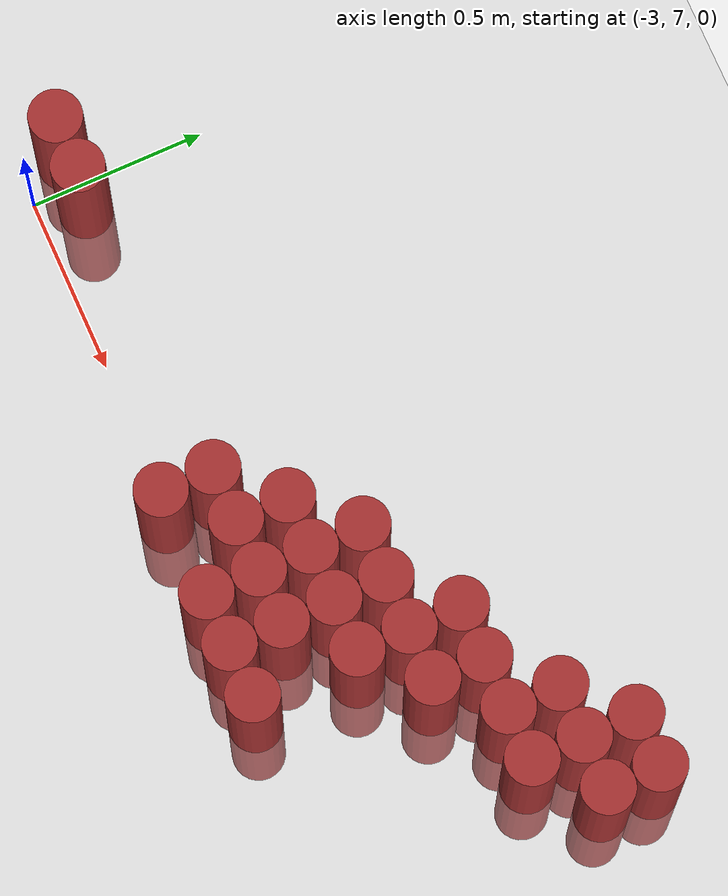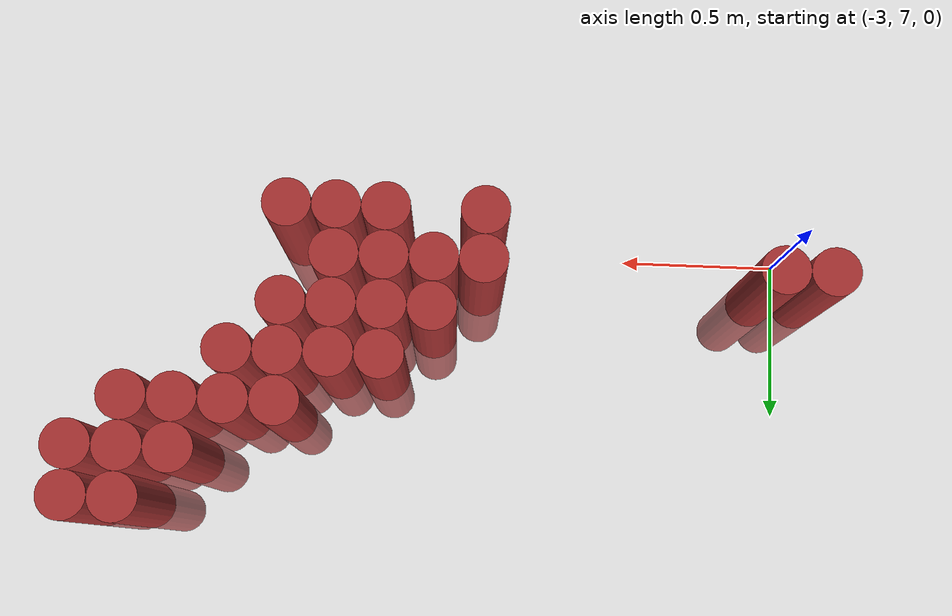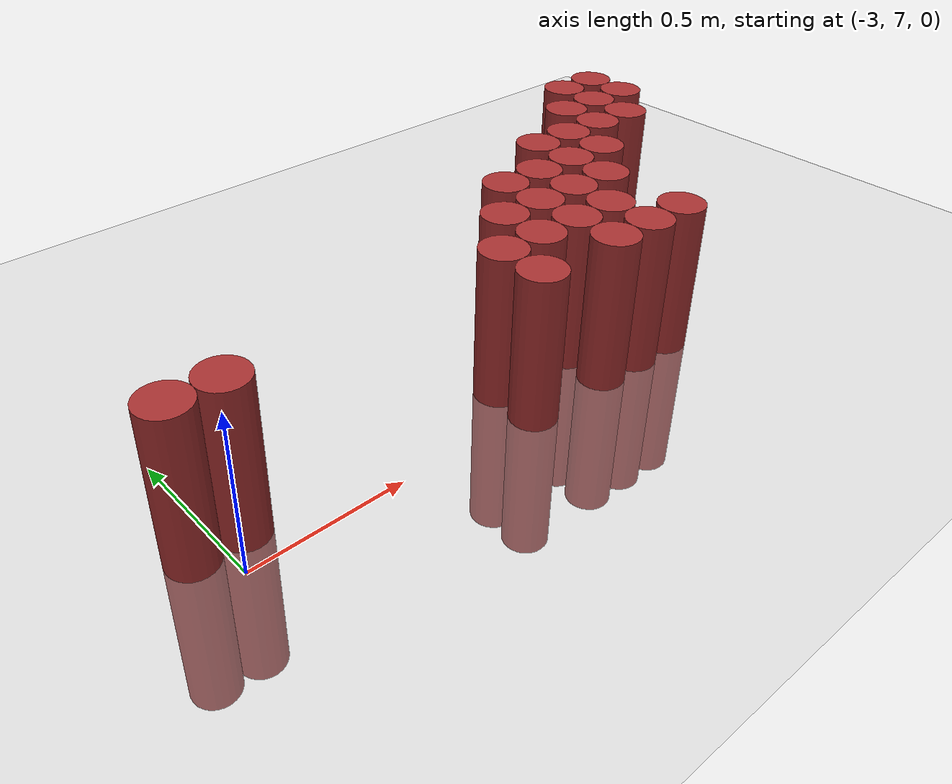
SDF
<sdf version="1.6">
 <world name="default">
  <model name="ground_plane">
   <static>1</static>
   <link name="link">
    <collision name="collision">
     <geometry><plane><normal>0 0 1</normal><size>100 100</size></plane></geometry>
     <surface><friction><ode><mu>100</mu><mu2>50</mu2></ode></friction></surface>
    </collision>
    <visual name="visual">
     <cast_shadows>0</cast_shadows>
     <geometry><plane><normal>0 0 1</normal><size>100 100</size></plane></geometry>
     <material>
      <script><uri>file://media/materials/scripts/gazebo.material</uri><name>Gazebo/Grey</name></script>
     </material>
    </visual>
   </link>
  </model>
  <model name="unit_cylinder_169">
   <static>1</static>
   <pose>-3.075000 7.125000 0.000000 0.000000 0.000000 0.000000</pose>
   <link name="link">
    <inertial>
     <mass>1</mass>
     <inertia><ixx>0.145833</ixx><ixy>0</ixy><ixz>0</ixz><iyy>0.145833</iyy><iyz>0</iyz><izz>0.125</izz></inertia>
    </inertial>
    <collision name="collision">
     <geometry><cylinder><radius>0.075000</radius><length>1</length></cylinder></geometry>
    </collision>
    <visual name="visual">
     <geometry><cylinder><radius>0.075000</radius><length>1</length></cylinder></geometry>
     <material>
      <ambient>0.648000 0.192000 0.192000 1</ambient>
      <diffuse>0.648000 0.192000 0.192000 1</diffuse>
     </material>
     <material>
      <script><name>Gazebo/Grey</name><uri>file://media/materials/scripts/gazebo.material</uri></script>
     </material>
    </visual>
   </link>
  </model>
  <model name="unit_cylinder_176">
   <static>1</static>
   <pose>-2.925000 7.125000 0.000000 0.000000 0.000000 0.000000</pose>
   <link name="link">
    <inertial>
     <mass>1</mass>
     <inertia><ixx>0.145833</ixx><ixy>0</ixy><ixz>0</ixz><iyy>0.145833</iyy><iyz>0</iyz><izz>0.125</izz></inertia>
    </inertial>
    <collision name="collision">
     <geometry><cylinder><radius>0.075000</radius><length>1</length></cylinder></geometry>
    </collision>
    <visual name="visual">
     <geometry><cylinder><radius>0.075000</radius><length>1</length></cylinder></geometry>
     <material>
      <ambient>0.648000 0.192000 0.192000 1</ambient>
      <diffuse>0.648000 0.192000 0.192000 1</diffuse>
     </material>
     <material>
      <script><name>Gazebo/Grey</name><uri>file://media/materials/scripts/gazebo.material</uri></script>
     </material>
    </visual>
   </link>
  </model>
  <model name="unit_cylinder_197">
   <static>1</static>
   <pose>-2.025000 6.975000 0.000000 0.000000 0.000000 0.000000</pose>
   <link name="link">
    <inertial>
     <mass>1</mass>
     <inertia><ixx>0.145833</ixx><ixy>0</ixy><ixz>0</ixz><iyy>0.145833</iyy><iyz>0</iyz><izz>0.125</izz></inertia>
    </inertial>
    <collision name="collision">
     <geometry><cylinder><radius>0.075000</radius><length>1</length></cylinder></geometry>
    </collision>
    <visual name="visual">
     <geometry><cylinder><radius>0.075000</radius><length>1</length></cylinder></geometry>
     <material>
      <ambient>0.648000 0.192000 0.192000 1</ambient>
      <diffuse>0.648000 0.192000 0.192000 1</diffuse>
     </material>
     <material>
      <script><name>Gazebo/Grey</name><uri>file://media/materials/scripts/gazebo.material</uri></script>
     </material>
    </visual>
   </link>
  </model>
  <model name="unit_cylinder_198">
   <static>1</static>
   <pose>-2.025000 7.125000 0.000000 0.000000 0.000000 0.000000</pose>
   <link name="link">
    <inertial>
     <mass>1</mass>
     <inertia><ixx>0.145833</ixx><ixy>0</ixy><ixz>0</ixz><iyy>0.145833</iyy><iyz>0</iyz><izz>0.125</izz></inertia>
    </inertial>
    <collision name="collision">
     <geometry><cylinder><radius>0.075000</radius><length>1</length></cylinder></geometry>
    </collision>
    <visual name="visual">
     <geometry><cylinder><radius>0.075000</radius><length>1</length></cylinder></geometry>
     <material>
      <ambient>0.648000 0.192000 0.192000 1</ambient>
      <diffuse>0.648000 0.192000 0.192000 1</diffuse>
     </material>
     <material>
      <script><name>Gazebo/Grey</name><uri>file://media/materials/scripts/gazebo.material</uri></script>
     </material>
    </visual>
   </link>
  </model>
  <model name="unit_cylinder_200">
   <static>1</static>
   <pose>-1.875000 7.125000 0.000000 0.000000 0.000000 0.000000</pose>
   <link name="link">
    <inertial>
     <mass>1</mass>
     <inertia><ixx>0.145833</ixx><ixy>0</ixy><ixz>0</ixz><iyy>0.145833</iyy><iyz>0</iyz><izz>0.125</izz></inertia>
    </inertial>
    <collision name="collision">
     <geometry><cylinder><radius>0.075000</radius><length>1</length></cylinder></geometry>
    </collision>
    <visual name="visual">
     <geometry><cylinder><radius>0.075000</radius><length>1</length></cylinder></geometry>
     <material>
      <ambient>0.648000 0.192000 0.192000 1</ambient>
      <diffuse>0.648000 0.192000 0.192000 1</diffuse>
     </material>
     <material>
      <script><name>Gazebo/Grey</name><uri>file://media/materials/scripts/gazebo.material</uri></script>
     </material>
    </visual>
   </link>
  </model>
  <model name="unit_cylinder_201">
   <static>1</static>
   <pose>-1.875000 7.275000 0.000000 0.000000 0.000000 0.000000</pose>
   <link name="link">
    <inertial>
     <mass>1</mass>
     <inertia><ixx>0.145833</ixx><ixy>0</ixy><ixz>0</ixz><iyy>0.145833</iyy><iyz>0</iyz><izz>0.125</izz></inertia>
    </inertial>
    <collision name="collision">
     <geometry><cylinder><radius>0.075000</radius><length>1</length></cylinder></geometry>
    </collision>
    <visual name="visual">
     <geometry><cylinder><radius>0.075000</radius><length>1</length></cylinder></geometry>
     <material>
      <ambient>0.648000 0.192000 0.192000 1</ambient>
      <diffuse>0.648000 0.192000 0.192000 1</diffuse>
     </material>
     <material>
      <script><name>Gazebo/Grey</name><uri>file://media/materials/scripts/gazebo.material</uri></script>
     </material>
    </visual>
   </link>
  </model>
  <model name="unit_cylinder_205">
   <static>1</static>
   <pose>-1.725000 6.975000 0.000000 0.000000 0.000000 0.000000</pose>
   <link name="link">
    <inertial>
     <mass>1</mass>
     <inertia><ixx>0.145833</ixx><ixy>0</ixy><ixz>0</ixz><iyy>0.145833</iyy><iyz>0</iyz><izz>0.125</izz></inertia>
    </inertial>
    <collision name="collision">
     <geometry><cylinder><radius>0.075000</radius><length>1</length></cylinder></geometry>
    </collision>
    <visual name="visual">
     <geometry><cylinder><radius>0.075000</radius><length>1</length></cylinder></geometry>
     <material>
      <ambient>0.648000 0.192000 0.192000 1</ambient>
      <diffuse>0.648000 0.192000 0.192000 1</diffuse>
     </material>
     <material>
      <script><name>Gazebo/Grey</name><uri>file://media/materials/scripts/gazebo.material</uri></script>
     </material>
    </visual>
   </link>
  </model>
  <model name="unit_cylinder_206">
   <static>1</static>
   <pose>-1.725000 7.125000 0.000000 0.000000 0.000000 0.000000</pose>
   <link name="link">
    <inertial>
     <mass>1</mass>
     <inertia><ixx>0.145833</ixx><ixy>0</ixy><ixz>0</ixz><iyy>0.145833</iyy><iyz>0</iyz><izz>0.125</izz></inertia>
    </inertial>
    <collision name="collision">
     <geometry><cylinder><radius>0.075000</radius><length>1</length></cylinder></geometry>
    </collision>
    <visual name="visual">
     <geometry><cylinder><radius>0.075000</radius><length>1</length></cylinder></geometry>
     <material>
      <ambient>0.648000 0.192000 0.192000 1</ambient>
      <diffuse>0.648000 0.192000 0.192000 1</diffuse>
     </material>
     <material>
      <script><name>Gazebo/Grey</name><uri>file://media/materials/scripts/gazebo.material</uri></script>
     </material>
    </visual>
   </link>
  </model>
  <model name="unit_cylinder_207">
   <static>1</static>
   <pose>-1.725000 7.275000 0.000000 0.000000 0.000000 0.000000</pose>
   <link name="link">
    <inertial>
     <mass>1</mass>
     <inertia><ixx>0.145833</ixx><ixy>0</ixy><ixz>0</ixz><iyy>0.145833</iyy><iyz>0</iyz><izz>0.125</izz></inertia>
    </inertial>
    <collision name="collision">
     <geometry><cylinder><radius>0.075000</radius><length>1</length></cylinder></geometry>
    </collision>
    <visual name="visual">
     <geometry><cylinder><radius>0.075000</radius><length>1</length></cylinder></geometry>
     <material>
      <ambient>0.648000 0.192000 0.192000 1</ambient>
      <diffuse>0.648000 0.192000 0.192000 1</diffuse>
     </material>
     <material>
      <script><name>Gazebo/Grey</name><uri>file://media/materials/scripts/gazebo.material</uri></script>
     </material>
    </visual>
   </link>
  </model>
  <model name="unit_cylinder_208">
   <static>1</static>
   <pose>-1.725000 7.425000 0.000000 0.000000 0.000000 0.000000</pose>
   <link name="link">
    <inertial>
     <mass>1</mass>
     <inertia><ixx>0.145833</ixx><ixy>0</ixy><ixz>0</ixz><iyy>0.145833</iyy><iyz>0</iyz><izz>0.125</izz></inertia>
    </inertial>
    <collision name="collision">
     <geometry><cylinder><radius>0.075000</radius><length>1</length></cylinder></geometry>
    </collision>
    <visual name="visual">
     <geometry><cylinder><radius>0.075000</radius><length>1</length></cylinder></geometry>
     <material>
      <ambient>0.648000 0.192000 0.192000 1</ambient>
      <diffuse>0.648000 0.192000 0.192000 1</diffuse>
     </material>
     <material>
      <script><name>Gazebo/Grey</name><uri>file://media/materials/scripts/gazebo.material</uri></script>
     </material>
    </visual>
   </link>
  </model>
  <model name="unit_cylinder_210">
   <static>1</static>
   <pose>-1.575000 6.975000 0.000000 0.000000 0.000000 0.000000</pose>
   <link name="link">
    <inertial>
     <mass>1</mass>
     <inertia><ixx>0.145833</ixx><ixy>0</ixy><ixz>0</ixz><iyy>0.145833</iyy><iyz>0</iyz><izz>0.125</izz></inertia>
    </inertial>
    <collision name="collision">
     <geometry><cylinder><radius>0.075000</radius><length>1</length></cylinder></geometry>
    </collision>
    <visual name="visual">
     <geometry><cylinder><radius>0.075000</radius><length>1</length></cylinder></geometry>
     <material>
      <ambient>0.648000 0.192000 0.192000 1</ambient>
      <diffuse>0.648000 0.192000 0.192000 1</diffuse>
     </material>
     <material>
      <script><name>Gazebo/Grey</name><uri>file://media/materials/scripts/gazebo.material</uri></script>
     </material>
    </visual>
   </link>
  </model>
  <model name="unit_cylinder_211">
   <static>1</static>
   <pose>-1.575000 7.125000 0.000000 0.000000 0.000000 0.000000</pose>
   <link name="link">
    <inertial>
     <mass>1</mass>
     <inertia><ixx>0.145833</ixx><ixy>0</ixy><ixz>0</ixz><iyy>0.145833</iyy><iyz>0</iyz><izz>0.125</izz></inertia>
    </inertial>
    <collision name="collision">
     <geometry><cylinder><radius>0.075000</radius><length>1</length></cylinder></geometry>
    </collision>
    <visual name="visual">
     <geometry><cylinder><radius>0.075000</radius><length>1</length></cylinder></geometry>
     <material>
      <ambient>0.648000 0.192000 0.192000 1</ambient>
      <diffuse>0.648000 0.192000 0.192000 1</diffuse>
     </material>
     <material>
      <script><name>Gazebo/Grey</name><uri>file://media/materials/scripts/gazebo.material</uri></script>
     </material>
    </visual>
   </link>
  </model>
  <model name="unit_cylinder_212">
   <static>1</static>
   <pose>-1.575000 7.275000 0.000000 0.000000 0.000000 0.000000</pose>
   <link name="link">
    <inertial>
     <mass>1</mass>
     <inertia><ixx>0.145833</ixx><ixy>0</ixy><ixz>0</ixz><iyy>0.145833</iyy><iyz>0</iyz><izz>0.125</izz></inertia>
    </inertial>
    <collision name="collision">
     <geometry><cylinder><radius>0.075000</radius><length>1</length></cylinder></geometry>
    </collision>
    <visual name="visual">
     <geometry><cylinder><radius>0.075000</radius><length>1</length></cylinder></geometry>
     <material>
      <ambient>0.648000 0.192000 0.192000 1</ambient>
      <diffuse>0.648000 0.192000 0.192000 1</diffuse>
     </material>
     <material>
      <script><name>Gazebo/Grey</name><uri>file://media/materials/scripts/gazebo.material</uri></script>
     </material>
    </visual>
   </link>
  </model>
  <model name="unit_cylinder_213">
   <static>1</static>
   <pose>-1.575000 7.425000 0.000000 0.000000 0.000000 0.000000</pose>
   <link name="link">
    <inertial>
     <mass>1</mass>
     <inertia><ixx>0.145833</ixx><ixy>0</ixy><ixz>0</ixz><iyy>0.145833</iyy><iyz>0</iyz><izz>0.125</izz></inertia>
    </inertial>
    <collision name="collision">
     <geometry><cylinder><radius>0.075000</radius><length>1</length></cylinder></geometry>
    </collision>
    <visual name="visual">
     <geometry><cylinder><radius>0.075000</radius><length>1</length></cylinder></geometry>
     <material>
      <ambient>0.648000 0.192000 0.192000 1</ambient>
      <diffuse>0.648000 0.192000 0.192000 1</diffuse>
     </material>
     <material>
      <script><name>Gazebo/Grey</name><uri>file://media/materials/scripts/gazebo.material</uri></script>
     </material>
    </visual>
   </link>
  </model>
  <model name="unit_cylinder_217">
   <static>1</static>
   <pose>-1.425000 6.975000 0.000000 0.000000 0.000000 0.000000</pose>
   <link name="link">
    <inertial>
     <mass>1</mass>
     <inertia><ixx>0.145833</ixx><ixy>0</ixy><ixz>0</ixz><iyy>0.145833</iyy><iyz>0</iyz><izz>0.125</izz></inertia>
    </inertial>
    <collision name="collision">
     <geometry><cylinder><radius>0.075000</radius><length>1</length></cylinder></geometry>
    </collision>
    <visual name="visual">
     <geometry><cylinder><radius>0.075000</radius><length>1</length></cylinder></geometry>
     <material>
      <ambient>0.648000 0.192000 0.192000 1</ambient>
      <diffuse>0.648000 0.192000 0.192000 1</diffuse>
     </material>
     <material>
      <script><name>Gazebo/Grey</name><uri>file://media/materials/scripts/gazebo.material</uri></script>
     </material>
    </visual>
   </link>
  </model>
  <model name="unit_cylinder_218">
   <static>1</static>
   <pose>-1.425000 7.275000 0.000000 0.000000 0.000000 0.000000</pose>
   <link name="link">
    <inertial>
     <mass>1</mass>
     <inertia><ixx>0.145833</ixx><ixy>0</ixy><ixz>0</ixz><iyy>0.145833</iyy><iyz>0</iyz><izz>0.125</izz></inertia>
    </inertial>
    <collision name="collision">
     <geometry><cylinder><radius>0.075000</radius><length>1</length></cylinder></geometry>
    </collision>
    <visual name="visual">
     <geometry><cylinder><radius>0.075000</radius><length>1</length></cylinder></geometry>
     <material>
      <ambient>0.648000 0.192000 0.192000 1</ambient>
      <diffuse>0.648000 0.192000 0.192000 1</diffuse>
     </material>
     <material>
      <script><name>Gazebo/Grey</name><uri>file://media/materials/scripts/gazebo.material</uri></script>
     </material>
    </visual>
   </link>
  </model>
  <model name="unit_cylinder_219">
   <static>1</static>
   <pose>-1.425000 7.425000 0.000000 0.000000 0.000000 0.000000</pose>
   <link name="link">
    <inertial>
     <mass>1</mass>
     <inertia><ixx>0.145833</ixx><ixy>0</ixy><ixz>0</ixz><iyy>0.145833</iyy><iyz>0</iyz><izz>0.125</izz></inertia>
    </inertial>
    <collision name="collision">
     <geometry><cylinder><radius>0.075000</radius><length>1</length></cylinder></geometry>
    </collision>
    <visual name="visual">
     <geometry><cylinder><radius>0.075000</radius><length>1</length></cylinder></geometry>
     <material>
      <ambient>0.648000 0.192000 0.192000 1</ambient>
      <diffuse>0.648000 0.192000 0.192000 1</diffuse>
     </material>
     <material>
      <script><name>Gazebo/Grey</name><uri>file://media/materials/scripts/gazebo.material</uri></script>
     </material>
    </visual>
   </link>
  </model>
  <model name="unit_cylinder_220">
   <static>1</static>
   <pose>-1.425000 7.575000 0.000000 0.000000 0.000000 0.000000</pose>
   <link name="link">
    <inertial>
     <mass>1</mass>
     <inertia><ixx>0.145833</ixx><ixy>0</ixy><ixz>0</ixz><iyy>0.145833</iyy><iyz>0</iyz><izz>0.125</izz></inertia>
    </inertial>
    <collision name="collision">
     <geometry><cylinder><radius>0.075000</radius><length>1</length></cylinder></geometry>
    </collision>
    <visual name="visual">
     <geometry><cylinder><radius>0.075000</radius><length>1</length></cylinder></geometry>
     <material>
      <ambient>0.648000 0.192000 0.192000 1</ambient>
      <diffuse>0.648000 0.192000 0.192000 1</diffuse>
     </material>
     <material>
      <script><name>Gazebo/Grey</name><uri>file://media/materials/scripts/gazebo.material</uri></script>
     </material>
    </visual>
   </link>
  </model>
  <model name="unit_cylinder_223">
   <static>1</static>
   <pose>-1.275000 7.425000 0.000000 0.000000 0.000000 0.000000</pose>
   <link name="link">
    <inertial>
     <mass>1</mass>
     <inertia><ixx>0.145833</ixx><ixy>0</ixy><ixz>0</ixz><iyy>0.145833</iyy><iyz>0</iyz><izz>0.125</izz></inertia>
    </inertial>
    <collision name="collision">
     <geometry><cylinder><radius>0.075000</radius><length>1</length></cylinder></geometry>
    </collision>
    <visual name="visual">
     <geometry><cylinder><radius>0.075000</radius><length>1</length></cylinder></geometry>
     <material>
      <ambient>0.648000 0.192000 0.192000 1</ambient>
      <diffuse>0.648000 0.192000 0.192000 1</diffuse>
     </material>
     <material>
      <script><name>Gazebo/Grey</name><uri>file://media/materials/scripts/gazebo.material</uri></script>
     </material>
    </visual>
   </link>
  </model>
  <model name="unit_cylinder_224">
   <static>1</static>
   <pose>-1.275000 7.575000 0.000000 0.000000 0.000000 0.000000</pose>
   <link name="link">
    <inertial>
     <mass>1</mass>
     <inertia><ixx>0.145833</ixx><ixy>0</ixy><ixz>0</ixz><iyy>0.145833</iyy><iyz>0</iyz><izz>0.125</izz></inertia>
    </inertial>
    <collision name="collision">
     <geometry><cylinder><radius>0.075000</radius><length>1</length></cylinder></geometry>
    </collision>
    <visual name="visual">
     <geometry><cylinder><radius>0.075000</radius><length>1</length></cylinder></geometry>
     <material>
      <ambient>0.648000 0.192000 0.192000 1</ambient>
      <diffuse>0.648000 0.192000 0.192000 1</diffuse>
     </material>
     <material>
      <script><name>Gazebo/Grey</name><uri>file://media/materials/scripts/gazebo.material</uri></script>
     </material>
    </visual>
   </link>
  </model>
  <model name="unit_cylinder_225">
   <static>1</static>
   <pose>-1.125000 7.575000 0.000000 0.000000 0.000000 0.000000</pose>
   <link name="link">
    <inertial>
     <mass>1</mass>
     <inertia><ixx>0.145833</ixx><ixy>0</ixy><ixz>0</ixz><iyy>0.145833</iyy><iyz>0</iyz><izz>0.125</izz></inertia>
    </inertial>
    <collision name="collision">
     <geometry><cylinder><radius>0.075000</radius><length>1</length></cylinder></geometry>
    </collision>
    <visual name="visual">
     <geometry><cylinder><radius>0.075000</radius><length>1</length></cylinder></geometry>
     <material>
      <ambient>0.648000 0.192000 0.192000 1</ambient>
      <diffuse>0.648000 0.192000 0.192000 1</diffuse>
     </material>
     <material>
      <script><name>Gazebo/Grey</name><uri>file://media/materials/scripts/gazebo.material</uri></script>
     </material>
    </visual>
   </link>
  </model>
  <model name="unit_cylinder_226">
   <static>1</static>
   <pose>-1.125000 7.725000 0.000000 0.000000 0.000000 0.000000</pose>
   <link name="link">
    <inertial>
     <mass>1</mass>
     <inertia><ixx>0.145833</ixx><ixy>0</ixy><ixz>0</ixz><iyy>0.145833</iyy><iyz>0</iyz><izz>0.125</izz></inertia>
    </inertial>
    <collision name="collision">
     <geometry><cylinder><radius>0.075000</radius><length>1</length></cylinder></geometry>
    </collision>
    <visual name="visual">
     <geometry><cylinder><radius>0.075000</radius><length>1</length></cylinder></geometry>
     <material>
      <ambient>0.648000 0.192000 0.192000 1</ambient>
      <diffuse>0.648000 0.192000 0.192000 1</diffuse>
     </material>
     <material>
      <script><name>Gazebo/Grey</name><uri>file://media/materials/scripts/gazebo.material</uri></script>
     </material>
    </visual>
   </link>
  </model>
  <model name="unit_cylinder_227">
   <static>1</static>
   <pose>-0.975000 7.575000 0.000000 0.000000 0.000000 0.000000</pose>
   <link name="link">
    <inertial>
     <mass>1</mass>
     <inertia><ixx>0.145833</ixx><ixy>0</ixy><ixz>0</ixz><iyy>0.145833</iyy><iyz>0</iyz><izz>0.125</izz></inertia>
    </inertial>
    <collision name="collision">
     <geometry><cylinder><radius>0.075000</radius><length>1</length></cylinder></geometry>
    </collision>
    <visual name="visual">
     <geometry><cylinder><radius>0.075000</radius><length>1</length></cylinder></geometry>
     <material>
      <ambient>0.648000 0.192000 0.192000 1</ambient>
      <diffuse>0.648000 0.192000 0.192000 1</diffuse>
     </material>
     <material>
      <script><name>Gazebo/Grey</name><uri>file://media/materials/scripts/gazebo.material</uri></script>
     </material>
    </visual>
   </link>
  </model>
  <model name="unit_cylinder_228">
   <static>1</static>
   <pose>-0.975000 7.725000 0.000000 0.000000 0.000000 0.000000</pose>
   <link name="link">
    <inertial>
     <mass>1</mass>
     <inertia><ixx>0.145833</ixx><ixy>0</ixy><ixz>0</ixz><iyy>0.145833</iyy><iyz>0</iyz><izz>0.125</izz></inertia>
    </inertial>
    <collision name="collision">
     <geometry><cylinder><radius>0.075000</radius><length>1</length></cylinder></geometry>
    </collision>
    <visual name="visual">
     <geometry><cylinder><radius>0.075000</radius><length>1</length></cylinder></geometry>
     <material>
      <ambient>0.648000 0.192000 0.192000 1</ambient>
      <diffuse>0.648000 0.192000 0.192000 1</diffuse>
     </material>
     <material>
      <script><name>Gazebo/Grey</name><uri>file://media/materials/scripts/gazebo.material</uri></script>
     </material>
    </visual>
   </link>
  </model>
  <model name="unit_cylinder_229">
   <static>1</static>
   <pose>-0.975000 7.875000 0.000000 0.000000 0.000000 0.000000</pose>
   <link name="link">
    <inertial>
     <mass>1</mass>
     <inertia><ixx>0.145833</ixx><ixy>0</ixy><ixz>0</ixz><iyy>0.145833</iyy><iyz>0</iyz><izz>0.125</izz></inertia>
    </inertial>
    <collision name="collision">
     <geometry><cylinder><radius>0.075000</radius><length>1</length></cylinder></geometry>
    </collision>
    <visual name="visual">
     <geometry><cylinder><radius>0.075000</radius><length>1</length></cylinder></geometry>
     <material>
      <ambient>0.648000 0.192000 0.192000 1</ambient>
      <diffuse>0.648000 0.192000 0.192000 1</diffuse>
     </material>
     <material>
      <script><name>Gazebo/Grey</name><uri>file://media/materials/scripts/gazebo.material</uri></script>
     </material>
    </visual>
   </link>
  </model>
  <model name="unit_cylinder_230">
   <static>1</static>
   <pose>-0.825000 7.725000 0.000000 0.000000 0.000000 0.000000</pose>
   <link name="link">
    <inertial>
     <mass>1</mass>
     <inertia><ixx>0.145833</ixx><ixy>0</ixy><ixz>0</ixz><iyy>0.145833</iyy><iyz>0</iyz><izz>0.125</izz></inertia>
    </inertial>
    <collision name="collision">
     <geometry><cylinder><radius>0.075000</radius><length>1</length></cylinder></geometry>
    </collision>
    <visual name="visual">
     <geometry><cylinder><radius>0.075000</radius><length>1</length></cylinder></geometry>
     <material>
      <ambient>0.648000 0.192000 0.192000 1</ambient>
      <diffuse>0.648000 0.192000 0.192000 1</diffuse>
     </material>
     <material>
      <script><name>Gazebo/Grey</name><uri>file://media/materials/scripts/gazebo.material</uri></script>
     </material>
    </visual>
   </link>
  </model>
  <model name="unit_cylinder_231">
   <static>1</static>
   <pose>-0.825000 7.875000 0.000000 0.000000 0.000000 0.000000</pose>
   <link name="link">
    <inertial>
     <mass>1</mass>
     <inertia><ixx>0.145833</ixx><ixy>0</ixy><ixz>0</ixz><iyy>0.145833</iyy><iyz>0</iyz><izz>0.125</izz></inertia>
    </inertial>
    <collision name="collision">
     <geometry><cylinder><radius>0.075000</radius><length>1</length></cylinder></geometry>
    </collision>
    <visual name="visual">
     <geometry><cylinder><radius>0.075000</radius><length>1</length></cylinder></geometry>
     <material>
      <ambient>0.648000 0.192000 0.192000 1</ambient>
      <diffuse>0.648000 0.192000 0.192000 1</diffuse>
     </material>
     <material>
      <script><name>Gazebo/Grey</name><uri>file://media/materials/scripts/gazebo.material</uri></script>
     </material>
    </visual>
   </link>
  </model>
 </world>
</sdf>
